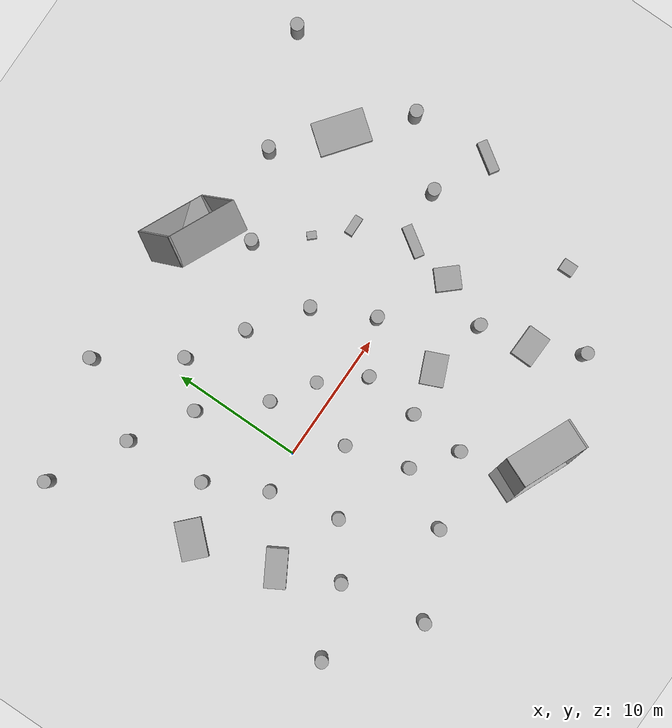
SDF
<sdf version="1.6">
 <world name="default">
  <model name="ground_plane">
   <static>1</static>
   <link name="link">
    <collision name="collision">
     <geometry><plane><normal>0 0 1</normal><size>100 100</size></plane></geometry>
     <surface><friction><ode><mu>100</mu><mu2>50</mu2></ode></friction></surface>
    </collision>
    <visual name="visual">
     <cast_shadows>0</cast_shadows>
     <geometry><plane><normal>0 0 1</normal><size>100 100</size></plane></geometry>
     <material>
      <script><uri>file://media/materials/scripts/gazebo.material</uri><name>Gazebo/Grey</name></script>
     </material>
    </visual>
   </link>
  </model>
  <model name="unit_cylinder">
   <pose>5.3177 1.52841 0.66176 0 -0 0.001729</pose>
   <link name="link">
    <inertial>
     <mass>1</mass>
     <inertia><ixx>0.145833</ixx><ixy>0</ixy><ixz>0</ixz><iyy>0.145833</iyy><iyz>0</iyz><izz>0.125</izz></inertia>
    </inertial>
    <collision name="collision">
     <geometry><cylinder><radius>0.5</radius><length>1.32353</length></cylinder></geometry>
    </collision>
    <visual name="visual">
     <geometry><cylinder><radius>0.5</radius><length>1.32353</length></cylinder></geometry>
     <material>
      <script><name>Gazebo/Grey</name><uri>file://media/materials/scripts/gazebo.material</uri></script>
     </material>
    </visual>
   </link>
  </model>
  <model name="unit_cylinder_clone">
   <pose>2.68095 -2.80478 2.75253 0 -0 0.003087</pose>
   <link name="link">
    <inertial>
     <mass>1</mass>
     <inertia><ixx>0.145833</ixx><ixy>0</ixy><ixz>0</ixz><iyy>0.145833</iyy><iyz>0</iyz><izz>0.125</izz></inertia>
    </inertial>
    <collision name="collision">
     <geometry><cylinder><radius>0.5</radius><length>5.50507</length></cylinder></geometry>
    </collision>
    <visual name="visual">
     <geometry><cylinder><radius>0.5</radius><length>5.50507</length></cylinder></geometry>
     <material>
      <script><name>Gazebo/Grey</name><uri>file://media/materials/scripts/gazebo.material</uri></script>
     </material>
    </visual>
   </link>
  </model>
  <model name="unit_cylinder_clone_0">
   <pose>2.22785 3.50849 2.75253 0 -0 0.003117</pose>
   <link name="link">
    <inertial>
     <mass>1</mass>
     <inertia><ixx>0.145833</ixx><ixy>0</ixy><ixz>0</ixz><iyy>0.145833</iyy><iyz>0</iyz><izz>0.125</izz></inertia>
    </inertial>
    <collision name="collision">
     <geometry><cylinder><radius>0.5</radius><length>5.50507</length></cylinder></geometry>
    </collision>
    <visual name="visual">
     <geometry><cylinder><radius>0.5</radius><length>5.50507</length></cylinder></geometry>
     <material>
      <script><name>Gazebo/Grey</name><uri>file://media/materials/scripts/gazebo.material</uri></script>
     </material>
    </visual>
   </link>
  </model>
  <model name="unit_cylinder_clone_1">
   <pose>7.38499 -5.59562 2.75253 0 -0 0.002942</pose>
   <link name="link">
    <inertial>
     <mass>1</mass>
     <inertia><ixx>0.145833</ixx><ixy>0</ixy><ixz>0</ixz><iyy>0.145833</iyy><iyz>0</iyz><izz>0.125</izz></inertia>
    </inertial>
    <collision name="collision">
     <geometry><cylinder><radius>0.5</radius><length>5.50507</length></cylinder></geometry>
    </collision>
    <visual name="visual">
     <geometry><cylinder><radius>0.5</radius><length>5.50507</length></cylinder></geometry>
     <material>
      <script><name>Gazebo/Grey</name><uri>file://media/materials/scripts/gazebo.material</uri></script>
     </material>
    </visual>
   </link>
  </model>
  <model name="unit_cylinder_clone_2">
   <pose>9.49418 5.00022 2.75253 0 -0 0.003097</pose>
   <link name="link">
    <inertial>
     <mass>1</mass>
     <inertia><ixx>0.145833</ixx><ixy>0</ixy><ixz>0</ixz><iyy>0.145833</iyy><iyz>0</iyz><izz>0.125</izz></inertia>
    </inertial>
    <collision name="collision">
     <geometry><cylinder><radius>0.5</radius><length>5.50507</length></cylinder></geometry>
    </collision>
    <visual name="visual">
     <geometry><cylinder><radius>0.5</radius><length>5.50507</length></cylinder></geometry>
     <material>
      <script><name>Gazebo/Grey</name><uri>file://media/materials/scripts/gazebo.material</uri></script>
     </material>
    </visual>
   </link>
  </model>
  <model name="unit_cylinder_clone_3">
   <pose>7.77893 -1.37954 2.75253 0 -0 0.003339</pose>
   <link name="link">
    <inertial>
     <mass>1</mass>
     <inertia><ixx>0.145833</ixx><ixy>0</ixy><ixz>0</ixz><iyy>0.145833</iyy><iyz>0</iyz><izz>0.125</izz></inertia>
    </inertial>
    <collision name="collision">
     <geometry><cylinder><radius>0.5</radius><length>5.50507</length></cylinder></geometry>
    </collision>
    <visual name="visual">
     <geometry><cylinder><radius>0.5</radius><length>5.50507</length></cylinder></geometry>
     <material>
      <script><name>Gazebo/Grey</name><uri>file://media/materials/scripts/gazebo.material</uri></script>
     </material>
    </visual>
   </link>
  </model>
  <model name="unit_cylinder_clone_4">
   <pose>3.98747 -7.5391 2.75253 0 -0 0.003351</pose>
   <link name="link">
    <inertial>
     <mass>1</mass>
     <inertia><ixx>0.145833</ixx><ixy>0</ixy><ixz>0</ixz><iyy>0.145833</iyy><iyz>0</iyz><izz>0.125</izz></inertia>
    </inertial>
    <collision name="collision">
     <geometry><cylinder><radius>0.5</radius><length>5.50507</length></cylinder></geometry>
    </collision>
    <visual name="visual">
     <geometry><cylinder><radius>0.5</radius><length>5.50507</length></cylinder></geometry>
     <material>
      <script><name>Gazebo/Grey</name><uri>file://media/materials/scripts/gazebo.material</uri></script>
     </material>
    </visual>
   </link>
  </model>
  <model name="unit_cylinder_clone_5">
   <pose>5.48239 7.91912 2.75253 0 -0 0.00293</pose>
   <link name="link">
    <inertial>
     <mass>1</mass>
     <inertia><ixx>0.145833</ixx><ixy>0</ixy><ixz>0</ixz><iyy>0.145833</iyy><iyz>0</iyz><izz>0.125</izz></inertia>
    </inertial>
    <collision name="collision">
     <geometry><cylinder><radius>0.5</radius><length>5.50507</length></cylinder></geometry>
    </collision>
    <visual name="visual">
     <geometry><cylinder><radius>0.5</radius><length>5.50507</length></cylinder></geometry>
     <material>
      <script><name>Gazebo/Grey</name><uri>file://media/materials/scripts/gazebo.material</uri></script>
     </material>
    </visual>
   </link>
  </model>
  <model name="unit_cylinder_clone_6">
   <pose>7.07457 -9.88001 2.75253 0 -0 0.00313</pose>
   <link name="link">
    <inertial>
     <mass>1</mass>
     <inertia><ixx>0.145833</ixx><ixy>0</ixy><ixz>0</ixz><iyy>0.145833</iyy><iyz>0</iyz><izz>0.125</izz></inertia>
    </inertial>
    <collision name="collision">
     <geometry><cylinder><radius>0.5</radius><length>5.50507</length></cylinder></geometry>
    </collision>
    <visual name="visual">
     <geometry><cylinder><radius>0.5</radius><length>5.50507</length></cylinder></geometry>
     <material>
      <script><name>Gazebo/Grey</name><uri>file://media/materials/scripts/gazebo.material</uri></script>
     </material>
    </visual>
   </link>
  </model>
  <model name="unit_cylinder_clone_7">
   <pose>11.6646 0.575183 2.75253 0 -0 0.003084</pose>
   <link name="link">
    <inertial>
     <mass>1</mass>
     <inertia><ixx>0.145833</ixx><ixy>0</ixy><ixz>0</ixz><iyy>0.145833</iyy><iyz>0</iyz><izz>0.125</izz></inertia>
    </inertial>
    <collision name="collision">
     <geometry><cylinder><radius>0.5</radius><length>5.50507</length></cylinder></geometry>
    </collision>
    <visual name="visual">
     <geometry><cylinder><radius>0.5</radius><length>5.50507</length></cylinder></geometry>
     <material>
      <script><name>Gazebo/Grey</name><uri>file://media/materials/scripts/gazebo.material</uri></script>
     </material>
    </visual>
   </link>
  </model>
  <model name="unit_cylinder_clone_8">
   <pose>11.0394 11.2508 2.75253 0 -0 0.003015</pose>
   <link name="link">
    <inertial>
     <mass>1</mass>
     <inertia><ixx>0.145833</ixx><ixy>0</ixy><ixz>0</ixz><iyy>0.145833</iyy><iyz>0</iyz><izz>0.125</izz></inertia>
    </inertial>
    <collision name="collision">
     <geometry><cylinder><radius>0.5</radius><length>5.50507</length></cylinder></geometry>
    </collision>
    <visual name="visual">
     <geometry><cylinder><radius>0.5</radius><length>5.50507</length></cylinder></geometry>
     <material>
      <script><name>Gazebo/Grey</name><uri>file://media/materials/scripts/gazebo.material</uri></script>
     </material>
    </visual>
   </link>
  </model>
  <model name="unit_cylinder_clone_9">
   <pose>1.3246 10.3757 2.75253 0 -0 0.003195</pose>
   <link name="link">
    <inertial>
     <mass>1</mass>
     <inertia><ixx>0.145833</ixx><ixy>0</ixy><ixz>0</ixz><iyy>0.145833</iyy><iyz>0</iyz><izz>0.125</izz></inertia>
    </inertial>
    <collision name="collision">
     <geometry><cylinder><radius>0.5</radius><length>5.50507</length></cylinder></geometry>
    </collision>
    <visual name="visual">
     <geometry><cylinder><radius>0.5</radius><length>5.50507</length></cylinder></geometry>
     <material>
      <script><name>Gazebo/Grey</name><uri>file://media/materials/scripts/gazebo.material</uri></script>
     </material>
    </visual>
   </link>
  </model>
  <model name="unit_cylinder_clone_12">
   <pose>15.4134 -5.85664 2.75253 0 -0 0.003344</pose>
   <link name="link">
    <inertial>
     <mass>1</mass>
     <inertia><ixx>0.145833</ixx><ixy>0</ixy><ixz>0</ixz><iyy>0.145833</iyy><iyz>0</iyz><izz>0.125</izz></inertia>
    </inertial>
    <collision name="collision">
     <geometry><cylinder><radius>0.5</radius><length>5.50507</length></cylinder></geometry>
    </collision>
    <visual name="visual">
     <geometry><cylinder><radius>0.5</radius><length>5.50507</length></cylinder></geometry>
     <material>
      <script><name>Gazebo/Grey</name><uri>file://media/materials/scripts/gazebo.material</uri></script>
     </material>
    </visual>
   </link>
  </model>
  <model name="unit_box">
   <pose>13.9889 7.99619 0.672427 -5e-06 5e-06 0.739095</pose>
   <link name="link">
    <inertial>
     <mass>1</mass>
     <inertia>
      <ixx>0.166667</ixx>
      <ixy>0</ixy>
      <ixz>0</ixz>
      <iyy>0.166667</iyy>
      <iyz>0</iyz>
      <izz>0.166667</izz>
     </inertia>
    </inertial>
    <collision name="collision"><geometry><box><size>0.564982 0.726007 1.34486</size></box></geometry></collision>
    <visual name="visual">
     <geometry><box><size>0.564982 0.726007 1.34486</size></box></geometry>
     <material>
      <script><name>Gazebo/Grey</name><uri>file://media/materials/scripts/gazebo.material</uri></script>
     </material>
    </visual>
   </link>
  </model>
  <model name="unit_box_clone">
   <pose>11 -5.00015 0.78823 -4e-06 -0 -1.15764</pose>
   <link name="link">
    <inertial>
     <mass>1</mass>
     <inertia>
      <ixx>0.166667</ixx>
      <ixy>0</ixy>
      <ixz>0</ixz>
      <iyy>0.166667</iyy>
      <iyz>0</iyz>
      <izz>0.166667</izz>
     </inertia>
    </inertial>
    <collision name="collision"><geometry><box><size>1.76997 2.44518 1.57647</size></box></geometry></collision>
    <visual name="visual">
     <geometry><box><size>1.76997 2.44518 1.57647</size></box></geometry>
     <material>
      <script><name>Gazebo/Grey</name><uri>file://media/materials/scripts/gazebo.material</uri></script>
     </material>
    </visual>
   </link>
  </model>
  <model name="unit_box_clone_0">
   <pose>17.0327 -2.04325 0.841035 0 -5e-06 0.733102</pose>
   <link name="link">
    <inertial>
     <mass>1</mass>
     <inertia>
      <ixx>0.166667</ixx>
      <ixy>0</ixy>
      <ixz>0</ixz>
      <iyy>0.166667</iyy>
      <iyz>0</iyz>
      <izz>0.166667</izz>
     </inertia>
    </inertial>
    <collision name="collision"><geometry><box><size>1.76997 1.92154 1.68208</size></box></geometry></collision>
    <visual name="visual">
     <geometry><box><size>1.76997 1.92154 1.68208</size></box></geometry>
     <material>
      <script><name>Gazebo/Grey</name><uri>file://media/materials/scripts/gazebo.material</uri></script>
     </material>
    </visual>
   </link>
  </model>
  <model name="unit_box_clone_1">
   <pose>16.3984 -9.84099 0.926301 0 5e-06 1.55039</pose>
   <link name="link">
    <inertial>
     <mass>1</mass>
     <inertia>
      <ixx>0.166667</ixx>
      <ixy>0</ixy>
      <ixz>0</ixz>
      <iyy>0.166667</iyy>
      <iyz>0</iyz>
      <izz>0.166667</izz>
     </inertia>
    </inertial>
    <collision name="collision"><geometry><box><size>1.76997 2.44518 1.85261</size></box></geometry></collision>
    <visual name="visual">
     <geometry><box><size>1.76997 2.44518 1.85261</size></box></geometry>
     <material>
      <script><name>Gazebo/Grey</name><uri>file://media/materials/scripts/gazebo.material</uri></script>
     </material>
    </visual>
   </link>
  </model>
  <model name="unit_box_clone_0_clone">
   <pose>21.504 10.512 0.43037 -1e-06 -1.57079 -0.657494</pose>
   <link name="link">
    <inertial>
     <mass>1</mass>
     <inertia>
      <ixx>0.166667</ixx>
      <ixy>0</ixy>
      <ixz>0</ixz>
      <iyy>0.166667</iyy>
      <iyz>0</iyz>
      <izz>0.166667</izz>
     </inertia>
    </inertial>
    <collision name="collision"><geometry><box><size>0.860775 2.57296 3.98743</size></box></geometry></collision>
    <visual name="visual">
     <geometry><box><size>0.860775 2.57296 3.98743</size></box></geometry>
     <material>
      <script><name>Gazebo/Grey</name><uri>file://media/materials/scripts/gazebo.material</uri></script>
     </material>
    </visual>
   </link>
  </model>
  <model name="unit_box_0">
   <pose>16.3175 5.84891 0.859724 0 -0 0.022299</pose>
   <link name="link">
    <inertial>
     <mass>1</mass>
     <inertia>
      <ixx>0.166667</ixx>
      <ixy>0</ixy>
      <ixz>0</ixz>
      <iyy>0.166667</iyy>
      <iyz>0</iyz>
      <izz>0.166667</izz>
     </inertia>
    </inertial>
    <collision name="collision"><geometry><box><size>1.47389 0.631413 1.71945</size></box></geometry></collision>
    <visual name="visual">
     <geometry><box><size>1.47389 0.631413 1.71945</size></box></geometry>
     <material>
      <script><name>Gazebo/Grey</name><uri>file://media/materials/scripts/gazebo.material</uri></script>
     </material>
    </visual>
   </link>
  </model>
  <model name="unit_box_clone_clone">
   <pose>26.0951 0.595663 0.788235 -0 -0 -0.573</pose>
   <link name="link">
    <inertial>
     <mass>1</mass>
     <inertia>
      <ixx>0.166667</ixx>
      <ixy>0</ixy>
      <ixz>0</ixz>
      <iyy>0.166667</iyy>
      <iyz>0</iyz>
      <izz>0.166667</izz>
     </inertia>
    </inertial>
    <collision name="collision"><geometry><box><size>0.770315 2.44518 1.57647</size></box></geometry></collision>
    <visual name="visual">
     <geometry><box><size>0.770315 2.44518 1.57647</size></box></geometry>
     <material>
      <script><name>Gazebo/Grey</name><uri>file://media/materials/scripts/gazebo.material</uri></script>
     </material>
    </visual>
   </link>
  </model>
  <model name="unit_box_clone_clone_0">
   <pose>22.7246 -8.85657 0.788235 0 -0 0.015585</pose>
   <link name="link">
    <inertial>
     <mass>1</mass>
     <inertia>
      <ixx>0.166667</ixx>
      <ixy>0</ixy>
      <ixz>0</ixz>
      <iyy>0.166667</iyy>
      <iyz>0</iyz>
      <izz>0.166667</izz>
     </inertia>
    </inertial>
    <collision name="collision"><geometry><box><size>0.926366 1.10204 1.57647</size></box></geometry></collision>
    <visual name="visual">
     <geometry><box><size>0.926366 1.10204 1.57647</size></box></geometry>
     <material>
      <script><name>Gazebo/Grey</name><uri>file://media/materials/scripts/gazebo.material</uri></script>
     </material>
    </visual>
   </link>
  </model>
  <model name="unit_cylinder_clone_7_clone_0">
   <pose>25.5032 6.72847 2.75253 0 -0 0.003087</pose>
   <link name="link">
    <inertial>
     <mass>1</mass>
     <inertia><ixx>0.145833</ixx><ixy>0</ixy><ixz>0</ixz><iyy>0.145833</iyy><iyz>0</iyz><izz>0.125</izz></inertia>
    </inertial>
    <collision name="collision">
     <geometry><cylinder><radius>0.5</radius><length>5.50507</length></cylinder></geometry>
    </collision>
    <visual name="visual">
     <geometry><cylinder><radius>0.5</radius><length>5.50507</length></cylinder></geometry>
     <material>
      <script><name>Gazebo/Grey</name><uri>file://media/materials/scripts/gazebo.material</uri></script>
     </material>
    </visual>
   </link>
  </model>
  <model name="unit_cylinder_clone_7_clone_1">
   <pose>21.5647 2.44803 2.75253 0 -0 0.002969</pose>
   <link name="link">
    <inertial>
     <mass>1</mass>
     <inertia><ixx>0.145833</ixx><ixy>0</ixy><ixz>0</ixz><iyy>0.145833</iyy><iyz>0</iyz><izz>0.125</izz></inertia>
    </inertial>
    <collision name="collision">
     <geometry><cylinder><radius>0.5</radius><length>5.50507</length></cylinder></geometry>
    </collision>
    <visual name="visual">
     <geometry><cylinder><radius>0.5</radius><length>5.50507</length></cylinder></geometry>
     <material>
      <script><name>Gazebo/Grey</name><uri>file://media/materials/scripts/gazebo.material</uri></script>
     </material>
    </visual>
   </link>
  </model>
  <model name="unit_cylinder_clone_7_clone_2">
   <pose>17.2802 14.0465 2.75253 0 -0 0.002939</pose>
   <link name="link">
    <inertial>
     <mass>1</mass>
     <inertia><ixx>0.145833</ixx><ixy>0</ixy><ixz>0</ixz><iyy>0.145833</iyy><iyz>0</iyz><izz>0.125</izz></inertia>
    </inertial>
    <collision name="collision">
     <geometry><cylinder><radius>0.5</radius><length>5.50507</length></cylinder></geometry>
    </collision>
    <visual name="visual">
     <geometry><cylinder><radius>0.5</radius><length>5.50507</length></cylinder></geometry>
     <material>
      <script><name>Gazebo/Grey</name><uri>file://media/materials/scripts/gazebo.material</uri></script>
     </material>
    </visual>
   </link>
  </model>
  <model name="unit_cylinder_clone_7_clone_3">
   <pose>18.1064 -13.3672 2.75253 0 -0 0.003012</pose>
   <link name="link">
    <inertial>
     <mass>1</mass>
     <inertia><ixx>0.145833</ixx><ixy>0</ixy><ixz>0</ixz><iyy>0.145833</iyy><iyz>0</iyz><izz>0.125</izz></inertia>
    </inertial>
    <collision name="collision">
     <geometry><cylinder><radius>0.5</radius><length>5.50507</length></cylinder></geometry>
    </collision>
    <visual name="visual">
     <geometry><cylinder><radius>0.5</radius><length>5.50507</length></cylinder></geometry>
     <material>
      <script><name>Gazebo/Grey</name><uri>file://media/materials/scripts/gazebo.material</uri></script>
     </material>
    </visual>
   </link>
  </model>
  <model name="unit_cylinder_clone_7_clone_1_clone_2">
   <pose>25.7541 17.3909 2.75253 0 -0 0.003042</pose>
   <link name="link">
    <inertial>
     <mass>1</mass>
     <inertia><ixx>0.145833</ixx><ixy>0</ixy><ixz>0</ixz><iyy>0.145833</iyy><iyz>0</iyz><izz>0.125</izz></inertia>
    </inertial>
    <collision name="collision">
     <geometry><cylinder><radius>0.5</radius><length>5.50507</length></cylinder></geometry>
    </collision>
    <visual name="visual">
     <geometry><cylinder><radius>0.5</radius><length>5.50507</length></cylinder></geometry>
     <material>
      <script><name>Gazebo/Grey</name><uri>file://media/materials/scripts/gazebo.material</uri></script>
     </material>
    </visual>
   </link>
  </model>
  <model name="vRoom_clone_3_clone_clone_9_clone_clone_clone">
   <link name="Wall_0">
    <pose>-2.8 -0 -1e-06 -0 -0 -1.5708</pose>
    <velocity_decay><linear>0</linear><angular>0</angular></velocity_decay>
    <visual name="Wall_0_Visual">
     <pose>0 0 1.25 0 -0 0</pose>
     <geometry><box><size>5.75 0.15 2.5</size></box></geometry>
     <material>
      <script><uri>file://media/materials/scripts/gazebo.material</uri><name>Gazebo/Grey</name></script>
      <ambient>1 1 1 1</ambient>
     </material>
    </visual>
    <collision name="Wall_0_Collision">
     <pose>0 0 1.25 0 -0 0</pose>
     <geometry><box><size>5.75 0.15 2.5</size></box></geometry>
     <surface>
      <friction>
       <ode><mu>1</mu><mu2>1</mu2><fdir1>0 0 0</fdir1><slip1>0</slip1><slip2>0</slip2></ode>
       <torsional>
        <coefficient>1</coefficient>
        <patch_radius>0</patch_radius>
        <surface_radius>0</surface_radius>
        <use_patch_radius>1</use_patch_radius>
        <ode><slip>0</slip></ode>
       </torsional>
      </friction>
      <bounce><restitution_coefficient>0</restitution_coefficient><threshold>1e+06</threshold></bounce>
      <contact>
       <collide_without_contact>0</collide_without_contact>
       <collide_without_contact_bitmask>1</collide_without_contact_bitmask>
       <collide_bitmask>1</collide_bitmask>
       <ode>
        <soft_cfm>0</soft_cfm>
        <soft_erp>0.2</soft_erp>
        <kp>1e+13</kp>
        <kd>1</kd>
        <max_vel>0.01</max_vel>
        <min_depth>0</min_depth>
       </ode>
       <bullet>
        <split_impulse>1</split_impulse>
        <split_impulse_penetration_threshold>-0.01</split_impulse_penetration_threshold>
        <soft_cfm>0</soft_cfm>
        <soft_erp>0.2</soft_erp>
        <kp>1e+13</kp>
        <kd>1</kd>
       </bullet>
      </contact>
     </surface>
    </collision>
   </link>
   <link name="Wall_1">
    <pose>2e-06 -2.8 2e-06 0 -0 0</pose>
    <velocity_decay><linear>0</linear><angular>0</angular></velocity_decay>
    <visual name="Wall_1_Visual">
     <pose>0 0 1.25 0 -0 0</pose>
     <geometry><box><size>5.75 0.15 2.5</size></box></geometry>
     <material>
      <script><uri>file://media/materials/scripts/gazebo.material</uri><name>Gazebo/Grey</name></script>
      <ambient>1 1 1 1</ambient>
     </material>
    </visual>
    <collision name="Wall_1_Collision">
     <pose>0 0 1.25 0 -0 0</pose>
     <geometry><box><size>5.75 0.15 2.5</size></box></geometry>
     <surface>
      <friction>
       <ode><mu>1</mu><mu2>1</mu2><fdir1>0 0 0</fdir1><slip1>0</slip1><slip2>0</slip2></ode>
       <torsional>
        <coefficient>1</coefficient>
        <patch_radius>0</patch_radius>
        <surface_radius>0</surface_radius>
        <use_patch_radius>1</use_patch_radius>
        <ode><slip>0</slip></ode>
       </torsional>
      </friction>
      <bounce><restitution_coefficient>0</restitution_coefficient><threshold>1e+06</threshold></bounce>
      <contact>
       <collide_without_contact>0</collide_without_contact>
       <collide_without_contact_bitmask>1</collide_without_contact_bitmask>
       <collide_bitmask>1</collide_bitmask>
       <ode>
        <soft_cfm>0</soft_cfm>
        <soft_erp>0.2</soft_erp>
        <kp>1e+13</kp>
        <kd>1</kd>
        <max_vel>0.01</max_vel>
        <min_depth>0</min_depth>
       </ode>
       <bullet>
        <split_impulse>1</split_impulse>
        <split_impulse_penetration_threshold>-0.01</split_impulse_penetration_threshold>
        <soft_cfm>0</soft_cfm>
        <soft_erp>0.2</soft_erp>
        <kp>1e+13</kp>
        <kd>1</kd>
       </bullet>
      </contact>
     </surface>
    </collision>
   </link>
   <link name="Wall_2">
    <pose>2.8 0 1e-06 0 -0 1.5708</pose>
    <velocity_decay><linear>0</linear><angular>0</angular></velocity_decay>
    <visual name="Wall_2_Visual">
     <pose>0 0 1.25 0 -0 0</pose>
     <geometry><box><size>5.75 0.15 2.5</size></box></geometry>
     <material>
      <script><uri>file://media/materials/scripts/gazebo.material</uri><name>Gazebo/Grey</name></script>
      <ambient>1 1 1 1</ambient>
     </material>
    </visual>
    <collision name="Wall_2_Collision">
     <pose>0 0 1.25 0 -0 0</pose>
     <geometry><box><size>5.75 0.15 2.5</size></box></geometry>
     <surface>
      <friction>
       <ode><mu>1</mu><mu2>1</mu2><fdir1>0 0 0</fdir1><slip1>0</slip1><slip2>0</slip2></ode>
       <torsional>
        <coefficient>1</coefficient>
        <patch_radius>0</patch_radius>
        <surface_radius>0</surface_radius>
        <use_patch_radius>1</use_patch_radius>
        <ode><slip>0</slip></ode>
       </torsional>
      </friction>
      <bounce><restitution_coefficient>0</restitution_coefficient><threshold>1e+06</threshold></bounce>
      <contact>
       <collide_without_contact>0</collide_without_contact>
       <collide_without_contact_bitmask>1</collide_without_contact_bitmask>
       <collide_bitmask>1</collide_bitmask>
       <ode>
        <soft_cfm>0</soft_cfm>
        <soft_erp>0.2</soft_erp>
        <kp>1e+13</kp>
        <kd>1</kd>
        <max_vel>0.01</max_vel>
        <min_depth>0</min_depth>
       </ode>
       <bullet>
        <split_impulse>1</split_impulse>
        <split_impulse_penetration_threshold>-0.01</split_impulse_penetration_threshold>
        <soft_cfm>0</soft_cfm>
        <soft_erp>0.2</soft_erp>
        <kp>1e+13</kp>
        <kd>1</kd>
       </bullet>
      </contact>
     </surface>
    </collision>
   </link>
   <link name="Wall_3">
    <pose>-2e-06 2.8 -2e-06 0 -0 3.14159</pose>
    <velocity_decay><linear>0</linear><angular>0</angular></velocity_decay>
    <visual name="Wall_3_Visual">
     <pose>0 0 1.25 0 -0 0</pose>
     <geometry><box><size>5.75 0.15 2.5</size></box></geometry>
     <material>
      <script><uri>file://media/materials/scripts/gazebo.material</uri><name>Gazebo/Grey</name></script>
      <ambient>1 1 1 1</ambient>
     </material>
    </visual>
    <collision name="Wall_3_Collision">
     <pose>0 0 1.25 0 -0 0</pose>
     <geometry><box><size>5.75 0.15 2.5</size></box></geometry>
     <surface>
      <friction>
       <ode><mu>1</mu><mu2>1</mu2><fdir1>0 0 0</fdir1><slip1>0</slip1><slip2>0</slip2></ode>
       <torsional>
        <coefficient>1</coefficient>
        <patch_radius>0</patch_radius>
        <surface_radius>0</surface_radius>
        <use_patch_radius>1</use_patch_radius>
        <ode><slip>0</slip></ode>
       </torsional>
      </friction>
      <bounce><restitution_coefficient>0</restitution_coefficient><threshold>1e+06</threshold></bounce>
      <contact>
       <collide_without_contact>0</collide_without_contact>
       <collide_without_contact_bitmask>1</collide_without_contact_bitmask>
       <collide_bitmask>1</collide_bitmask>
       <ode>
        <soft_cfm>0</soft_cfm>
        <soft_erp>0.2</soft_erp>
        <kp>1e+13</kp>
        <kd>1</kd>
        <max_vel>0.01</max_vel>
        <min_depth>0</min_depth>
       </ode>
       <bullet>
        <split_impulse>1</split_impulse>
        <split_impulse_penetration_threshold>-0.01</split_impulse_penetration_threshold>
        <soft_cfm>0</soft_cfm>
        <soft_erp>0.2</soft_erp>
        <kp>1e+13</kp>
        <kd>1</kd>
       </bullet>
      </contact>
     </surface>
    </collision>
   </link>
   <static>1</static>
   <pose>8.63913 14.2744 2.16038 1.23249 -0.326147 2.72159</pose>
  </model>
  <model name="vRoom_clone_3_clone_clone_9_clone_clone_clone_0">
   <link name="Wall_0">
    <pose>-2.8 -0 -1e-06 -0 -0 -1.5708</pose>
    <velocity_decay><linear>0</linear><angular>0</angular></velocity_decay>
    <visual name="Wall_0_Visual">
     <pose>0 0 1.25 0 -0 0</pose>
     <geometry><box><size>5.75 0.15 2.5</size></box></geometry>
     <material>
      <script><uri>file://media/materials/scripts/gazebo.material</uri><name>Gazebo/Grey</name></script>
      <ambient>1 1 1 1</ambient>
     </material>
    </visual>
    <collision name="Wall_0_Collision">
     <pose>0 0 1.25 0 -0 0</pose>
     <geometry><box><size>5.75 0.15 2.5</size></box></geometry>
     <surface>
      <friction>
       <ode><mu>1</mu><mu2>1</mu2><fdir1>0 0 0</fdir1><slip1>0</slip1><slip2>0</slip2></ode>
       <torsional>
        <coefficient>1</coefficient>
        <patch_radius>0</patch_radius>
        <surface_radius>0</surface_radius>
        <use_patch_radius>1</use_patch_radius>
        <ode><slip>0</slip></ode>
       </torsional>
      </friction>
      <bounce><restitution_coefficient>0</restitution_coefficient><threshold>1e+06</threshold></bounce>
      <contact>
       <collide_without_contact>0</collide_without_contact>
       <collide_without_contact_bitmask>1</collide_without_contact_bitmask>
       <collide_bitmask>1</collide_bitmask>
       <ode>
        <soft_cfm>0</soft_cfm>
        <soft_erp>0.2</soft_erp>
        <kp>1e+13</kp>
        <kd>1</kd>
        <max_vel>0.01</max_vel>
        <min_depth>0</min_depth>
       </ode>
       <bullet>
        <split_impulse>1</split_impulse>
        <split_impulse_penetration_threshold>-0.01</split_impulse_penetration_threshold>
        <soft_cfm>0</soft_cfm>
        <soft_erp>0.2</soft_erp>
        <kp>1e+13</kp>
        <kd>1</kd>
       </bullet>
      </contact>
     </surface>
    </collision>
   </link>
   <link name="Wall_1">
    <pose>2e-06 -2.8 2e-06 0 -0 0</pose>
    <velocity_decay><linear>0</linear><angular>0</angular></velocity_decay>
    <visual name="Wall_1_Visual">
     <pose>0 0 1.25 0 -0 0</pose>
     <geometry><box><size>5.75 0.15 2.5</size></box></geometry>
     <material>
      <script><uri>file://media/materials/scripts/gazebo.material</uri><name>Gazebo/Grey</name></script>
      <ambient>1 1 1 1</ambient>
     </material>
    </visual>
    <collision name="Wall_1_Collision">
     <pose>0 0 1.25 0 -0 0</pose>
     <geometry><box><size>5.75 0.15 2.5</size></box></geometry>
     <surface>
      <friction>
       <ode><mu>1</mu><mu2>1</mu2><fdir1>0 0 0</fdir1><slip1>0</slip1><slip2>0</slip2></ode>
       <torsional>
        <coefficient>1</coefficient>
        <patch_radius>0</patch_radius>
        <surface_radius>0</surface_radius>
        <use_patch_radius>1</use_patch_radius>
        <ode><slip>0</slip></ode>
       </torsional>
      </friction>
      <bounce><restitution_coefficient>0</restitution_coefficient><threshold>1e+06</threshold></bounce>
      <contact>
       <collide_without_contact>0</collide_without_contact>
       <collide_without_contact_bitmask>1</collide_without_contact_bitmask>
       <collide_bitmask>1</collide_bitmask>
       <ode>
        <soft_cfm>0</soft_cfm>
        <soft_erp>0.2</soft_erp>
        <kp>1e+13</kp>
        <kd>1</kd>
        <max_vel>0.01</max_vel>
        <min_depth>0</min_depth>
       </ode>
       <bullet>
        <split_impulse>1</split_impulse>
        <split_impulse_penetration_threshold>-0.01</split_impulse_penetration_threshold>
        <soft_cfm>0</soft_cfm>
        <soft_erp>0.2</soft_erp>
        <kp>1e+13</kp>
        <kd>1</kd>
       </bullet>
      </contact>
     </surface>
    </collision>
   </link>
   <link name="Wall_2">
    <pose>2.8 0 1e-06 0 -0 1.5708</pose>
    <velocity_decay><linear>0</linear><angular>0</angular></velocity_decay>
    <visual name="Wall_2_Visual">
     <pose>0 0 1.25 0 -0 0</pose>
     <geometry><box><size>5.75 0.15 2.5</size></box></geometry>
     <material>
      <script><uri>file://media/materials/scripts/gazebo.material</uri><name>Gazebo/Grey</name></script>
      <ambient>1 1 1 1</ambient>
     </material>
    </visual>
    <collision name="Wall_2_Collision">
     <pose>0 0 1.25 0 -0 0</pose>
     <geometry><box><size>5.75 0.15 2.5</size></box></geometry>
     <surface>
      <friction>
       <ode><mu>1</mu><mu2>1</mu2><fdir1>0 0 0</fdir1><slip1>0</slip1><slip2>0</slip2></ode>
       <torsional>
        <coefficient>1</coefficient>
        <patch_radius>0</patch_radius>
        <surface_radius>0</surface_radius>
        <use_patch_radius>1</use_patch_radius>
        <ode><slip>0</slip></ode>
       </torsional>
      </friction>
      <bounce><restitution_coefficient>0</restitution_coefficient><threshold>1e+06</threshold></bounce>
      <contact>
       <collide_without_contact>0</collide_without_contact>
       <collide_without_contact_bitmask>1</collide_without_contact_bitmask>
       <collide_bitmask>1</collide_bitmask>
       <ode>
        <soft_cfm>0</soft_cfm>
        <soft_erp>0.2</soft_erp>
        <kp>1e+13</kp>
        <kd>1</kd>
        <max_vel>0.01</max_vel>
        <min_depth>0</min_depth>
       </ode>
       <bullet>
        <split_impulse>1</split_impulse>
        <split_impulse_penetration_threshold>-0.01</split_impulse_penetration_threshold>
        <soft_cfm>0</soft_cfm>
        <soft_erp>0.2</soft_erp>
        <kp>1e+13</kp>
        <kd>1</kd>
       </bullet>
      </contact>
     </surface>
    </collision>
   </link>
   <link name="Wall_3">
    <pose>-2e-06 2.8 -2e-06 0 -0 3.14159</pose>
    <velocity_decay><linear>0</linear><angular>0</angular></velocity_decay>
    <visual name="Wall_3_Visual">
     <pose>0 0 1.25 0 -0 0</pose>
     <geometry><box><size>5.75 0.15 2.5</size></box></geometry>
     <material>
      <script><uri>file://media/materials/scripts/gazebo.material</uri><name>Gazebo/Grey</name></script>
      <ambient>1 1 1 1</ambient>
     </material>
    </visual>
    <collision name="Wall_3_Collision">
     <pose>0 0 1.25 0 -0 0</pose>
     <geometry><box><size>5.75 0.15 2.5</size></box></geometry>
     <surface>
      <friction>
       <ode><mu>1</mu><mu2>1</mu2><fdir1>0 0 0</fdir1><slip1>0</slip1><slip2>0</slip2></ode>
       <torsional>
        <coefficient>1</coefficient>
        <patch_radius>0</patch_radius>
        <surface_radius>0</surface_radius>
        <use_patch_radius>1</use_patch_radius>
        <ode><slip>0</slip></ode>
       </torsional>
      </friction>
      <bounce><restitution_coefficient>0</restitution_coefficient><threshold>1e+06</threshold></bounce>
      <contact>
       <collide_without_contact>0</collide_without_contact>
       <collide_without_contact_bitmask>1</collide_without_contact_bitmask>
       <collide_bitmask>1</collide_bitmask>
       <ode>
        <soft_cfm>0</soft_cfm>
        <soft_erp>0.2</soft_erp>
        <kp>1e+13</kp>
        <kd>1</kd>
        <max_vel>0.01</max_vel>
        <min_depth>0</min_depth>
       </ode>
       <bullet>
        <split_impulse>1</split_impulse>
        <split_impulse_penetration_threshold>-0.01</split_impulse_penetration_threshold>
        <soft_cfm>0</soft_cfm>
        <soft_erp>0.2</soft_erp>
        <kp>1e+13</kp>
        <kd>1</kd>
       </bullet>
      </contact>
     </surface>
    </collision>
   </link>
   <static>1</static>
   <pose>10.3169 -14.0406 -0.670588 -1.2564 1.2786 3.05373</pose>
  </model>
  <model name="unit_cylinder_clone_9_clone">
   <pose>-1.44374 7.61054 2.75253 0 -0 0.003919</pose>
   <link name="link">
    <inertial>
     <mass>1</mass>
     <inertia><ixx>0.145833</ixx><ixy>0</ixy><ixz>0</ixz><iyy>0.145833</iyy><iyz>0</iyz><izz>0.125</izz></inertia>
    </inertial>
    <collision name="collision">
     <geometry><cylinder><radius>0.5</radius><length>5.50507</length></cylinder></geometry>
    </collision>
    <visual name="visual">
     <geometry><cylinder><radius>0.5</radius><length>5.50507</length></cylinder></geometry>
     <material>
      <script><name>Gazebo/Grey</name><uri>file://media/materials/scripts/gazebo.material</uri></script>
     </material>
    </visual>
   </link>
  </model>
  <model name="unit_cylinder_clone_9_clone_0">
   <pose>-3.15382 -0.195184 2.75253 0 -0 0.003975</pose>
   <link name="link">
    <inertial>
     <mass>1</mass>
     <inertia><ixx>0.145833</ixx><ixy>0</ixy><ixz>0</ixz><iyy>0.145833</iyy><iyz>0</iyz><izz>0.125</izz></inertia>
    </inertial>
    <collision name="collision">
     <geometry><cylinder><radius>0.5</radius><length>5.50507</length></cylinder></geometry>
    </collision>
    <visual name="visual">
     <geometry><cylinder><radius>0.5</radius><length>5.50507</length></cylinder></geometry>
     <material>
      <script><name>Gazebo/Grey</name><uri>file://media/materials/scripts/gazebo.material</uri></script>
     </material>
    </visual>
   </link>
  </model>
  <model name="unit_cylinder_clone_9_clone_1">
   <pose>-1.9618 -5.42745 2.75253 0 -0 0.003869</pose>
   <link name="link">
    <inertial>
     <mass>1</mass>
     <inertia><ixx>0.145833</ixx><ixy>0</ixy><ixz>0</ixz><iyy>0.145833</iyy><iyz>0</iyz><izz>0.125</izz></inertia>
    </inertial>
    <collision name="collision">
     <geometry><cylinder><radius>0.5</radius><length>5.50507</length></cylinder></geometry>
    </collision>
    <visual name="visual">
     <geometry><cylinder><radius>0.5</radius><length>5.50507</length></cylinder></geometry>
     <material>
      <script><name>Gazebo/Grey</name><uri>file://media/materials/scripts/gazebo.material</uri></script>
     </material>
    </visual>
   </link>
  </model>
  <model name="unit_cylinder_clone_9_clone_2">
   <pose>-5.99197 10.3659 2.75253 0 -0 0.003795</pose>
   <link name="link">
    <inertial>
     <mass>1</mass>
     <inertia><ixx>0.145833</ixx><ixy>0</ixy><ixz>0</ixz><iyy>0.145833</iyy><iyz>0</iyz><izz>0.125</izz></inertia>
    </inertial>
    <collision name="collision">
     <geometry><cylinder><radius>0.5</radius><length>5.50507</length></cylinder></geometry>
    </collision>
    <visual name="visual">
     <geometry><cylinder><radius>0.5</radius><length>5.50507</length></cylinder></geometry>
     <material>
      <script><name>Gazebo/Grey</name><uri>file://media/materials/scripts/gazebo.material</uri></script>
     </material>
    </visual>
   </link>
  </model>
  <model name="unit_cylinder_clone_9_clone_3">
   <pose>-5.66871 -8.22137 2.75253 0 -0 0.00376</pose>
   <link name="link">
    <inertial>
     <mass>1</mass>
     <inertia><ixx>0.145833</ixx><ixy>0</ixy><ixz>0</ixz><iyy>0.145833</iyy><iyz>0</iyz><izz>0.125</izz></inertia>
    </inertial>
    <collision name="collision">
     <geometry><cylinder><radius>0.5</radius><length>5.50507</length></cylinder></geometry>
    </collision>
    <visual name="visual">
     <geometry><cylinder><radius>0.5</radius><length>5.50507</length></cylinder></geometry>
     <material>
      <script><name>Gazebo/Grey</name><uri>file://media/materials/scripts/gazebo.material</uri></script>
     </material>
    </visual>
   </link>
  </model>
  <model name="unit_cylinder_clone_9_clone_4">
   <pose>1.59431 -11.8525 2.75253 0 -0 0.004183</pose>
   <link name="link">
    <inertial>
     <mass>1</mass>
     <inertia><ixx>0.145833</ixx><ixy>0</ixy><ixz>0</ixz><iyy>0.145833</iyy><iyz>0</iyz><izz>0.125</izz></inertia>
    </inertial>
    <collision name="collision">
     <geometry><cylinder><radius>0.5</radius><length>5.50507</length></cylinder></geometry>
    </collision>
    <visual name="visual">
     <geometry><cylinder><radius>0.5</radius><length>5.50507</length></cylinder></geometry>
     <material>
      <script><name>Gazebo/Grey</name><uri>file://media/materials/scripts/gazebo.material</uri></script>
     </material>
    </visual>
   </link>
  </model>
  <model name="unit_cylinder_clone_9_clone_5">
   <pose>-5.39616 4.23929 2.75253 0 -0 0.004141</pose>
   <link name="link">
    <inertial>
     <mass>1</mass>
     <inertia><ixx>0.145833</ixx><ixy>0</ixy><ixz>0</ixz><iyy>0.145833</iyy><iyz>0</iyz><izz>0.125</izz></inertia>
    </inertial>
    <collision name="collision">
     <geometry><cylinder><radius>0.5</radius><length>5.50507</length></cylinder></geometry>
    </collision>
    <visual name="visual">
     <geometry><cylinder><radius>0.5</radius><length>5.50507</length></cylinder></geometry>
     <material>
      <script><name>Gazebo/Grey</name><uri>file://media/materials/scripts/gazebo.material</uri></script>
     </material>
    </visual>
   </link>
  </model>
  <model name="unit_box_clone_clone_clone">
   <pose>17.8469 1.5988 0.788235 -0 -0 -0.573479</pose>
   <link name="link">
    <inertial>
     <mass>1</mass>
     <inertia>
      <ixx>0.166667</ixx>
      <ixy>0</ixy>
      <ixz>0</ixz>
      <iyy>0.166667</iyy>
      <iyz>0</iyz>
      <izz>0.166667</izz>
     </inertia>
    </inertial>
    <collision name="collision"><geometry><box><size>0.770315 2.44518 1.57647</size></box></geometry></collision>
    <visual name="visual">
     <geometry><box><size>0.770315 2.44518 1.57647</size></box></geometry>
     <material>
      <script><name>Gazebo/Grey</name><uri>file://media/materials/scripts/gazebo.material</uri></script>
     </material>
    </visual>
   </link>
  </model>
  <model name="unit_box_2_clone">
   <pose>-7.49323 -3.73623 1.88991 -1e-06 0 -1.04487</pose>
   <link name="link">
    <inertial>
     <mass>1</mass>
     <inertia>
      <ixx>0.166667</ixx>
      <ixy>0</ixy>
      <ixz>0</ixz>
      <iyy>0.166667</iyy>
      <iyz>0</iyz>
      <izz>0.166667</izz>
     </inertia>
    </inertial>
    <collision name="collision"><geometry><box><size>1.62301 2.95919 3.77983</size></box></geometry></collision>
    <visual name="visual">
     <geometry><box><size>1.62301 2.95919 3.77983</size></box></geometry>
     <material>
      <script><name>Gazebo/Grey</name><uri>file://media/materials/scripts/gazebo.material</uri></script>
     </material>
    </visual>
   </link>
  </model>
  <model name="unit_box_2_clone_0">
   <pose>-9.35565 2.53471 0.899369 1.55841 -1.57079 -2.31575</pose>
   <link name="link">
    <inertial>
     <mass>1</mass>
     <inertia>
      <ixx>0.166667</ixx>
      <ixy>0</ixy>
      <ixz>0</ixz>
      <iyy>0.166667</iyy>
      <iyz>0</iyz>
      <izz>0.166667</izz>
     </inertia>
    </inertial>
    <collision name="collision"><geometry><box><size>1.79876 2.95919 2.00566</size></box></geometry></collision>
    <visual name="visual">
     <geometry><box><size>1.79876 2.95919 2.00566</size></box></geometry>
     <material>
      <script><name>Gazebo/Grey</name><uri>file://media/materials/scripts/gazebo.material</uri></script>
     </material>
    </visual>
   </link>
  </model>
  <model name="unit_cylinder_clone_9_clone_5_clone_0">
   <pose>-11.08 -10.2401 2.75253 0 -0 0.004404</pose>
   <link name="link">
    <inertial>
     <mass>1</mass>
     <inertia><ixx>0.145833</ixx><ixy>0</ixy><ixz>0</ixz><iyy>0.145833</iyy><iyz>0</iyz><izz>0.125</izz></inertia>
    </inertial>
    <collision name="collision">
     <geometry><cylinder><radius>0.5</radius><length>5.50507</length></cylinder></geometry>
    </collision>
    <visual name="visual">
     <geometry><cylinder><radius>0.5</radius><length>5.50507</length></cylinder></geometry>
     <material>
      <script><name>Gazebo/Grey</name><uri>file://media/materials/scripts/gazebo.material</uri></script>
     </material>
    </visual>
   </link>
  </model>
  <model name="unit_cylinder_clone_9_clone_5_clone_1">
   <pose>-11.7892 13.5738 2.75253 0 -0 0.004368</pose>
   <link name="link">
    <inertial>
     <mass>1</mass>
     <inertia><ixx>0.145833</ixx><ixy>0</ixy><ixz>0</ixz><iyy>0.145833</iyy><iyz>0</iyz><izz>0.125</izz></inertia>
    </inertial>
    <collision name="collision">
     <geometry><cylinder><radius>0.5</radius><length>5.50507</length></cylinder></geometry>
    </collision>
    <visual name="visual">
     <geometry><cylinder><radius>0.5</radius><length>5.50507</length></cylinder></geometry>
     <material>
      <script><name>Gazebo/Grey</name><uri>file://media/materials/scripts/gazebo.material</uri></script>
     </material>
    </visual>
   </link>
  </model>
  <model name="unit_cylinder_clone_7_clone_1_clone_2_clone_0">
   <pose>-2.59262 15.9908 2.75253 0 -0 0.003109</pose>
   <link name="link">
    <inertial>
     <mass>1</mass>
     <inertia><ixx>0.145833</ixx><ixy>0</ixy><ixz>0</ixz><iyy>0.145833</iyy><iyz>0</iyz><izz>0.125</izz></inertia>
    </inertial>
    <collision name="collision">
     <geometry><cylinder><radius>0.5</radius><length>5.50507</length></cylinder></geometry>
    </collision>
    <visual name="visual">
     <geometry><cylinder><radius>0.5</radius><length>5.50507</length></cylinder></geometry>
     <material>
      <script><name>Gazebo/Grey</name><uri>file://media/materials/scripts/gazebo.material</uri></script>
     </material>
    </visual>
   </link>
  </model>
  <model name="unit_cylinder_clone_7_clone_1_clone_2_clone_1">
   <pose>-4.6022 -14.8032 2.75253 0 -0 0.003216</pose>
   <link name="link">
    <inertial>
     <mass>1</mass>
     <inertia><ixx>0.145833</ixx><ixy>0</ixy><ixz>0</ixz><iyy>0.145833</iyy><iyz>0</iyz><izz>0.125</izz></inertia>
    </inertial>
    <collision name="collision">
     <geometry><cylinder><radius>0.5</radius><length>5.50507</length></cylinder></geometry>
    </collision>
    <visual name="visual">
     <geometry><cylinder><radius>0.5</radius><length>5.50507</length></cylinder></geometry>
     <material>
      <script><name>Gazebo/Grey</name><uri>file://media/materials/scripts/gazebo.material</uri></script>
     </material>
    </visual>
   </link>
  </model>
 </world>
</sdf>
